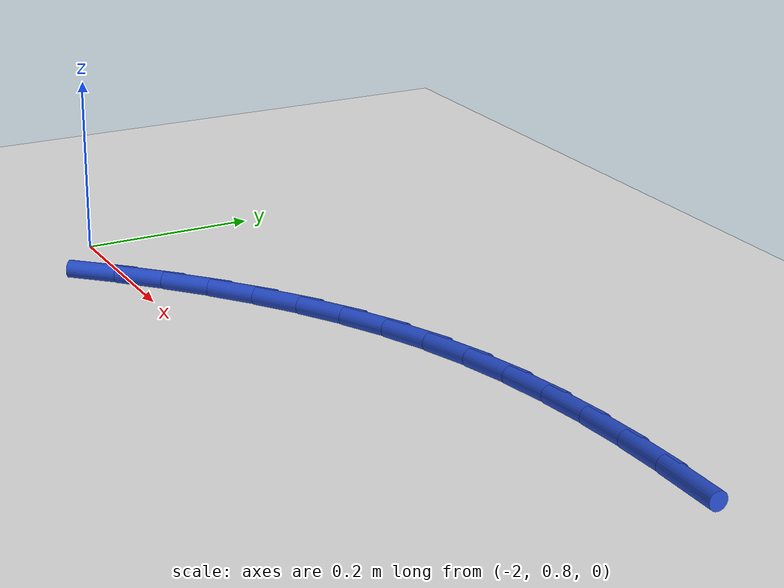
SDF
<sdf version="1.6">
 <world name="default">
  <model name="ground_plane">
   <static>1</static>
   <link name="link">
    <collision name="collision">
     <geometry><plane><normal>0 0 1</normal><size>100 100</size></plane></geometry>
     <surface><friction><ode><mu>100</mu><mu2>50</mu2></ode></friction></surface>
    </collision>
    <visual name="visual">
     <cast_shadows>0</cast_shadows>
     <geometry><plane><normal>0 0 1</normal><size>100 100</size></plane></geometry>
     <material>
      <script><uri>file://media/materials/scripts/gazebo.material</uri><name>Gazebo/WhiteGlow</name></script>
     </material>
    </visual>
   </link>
  </model>
  <model name="line">
   <link name="link_30">
    <pose>-1.1622267422665127 1.0493961772892269 0.01 0 1.57 -0.014316655820157379</pose>
    <collision name="collision">
     <geometry><cylinder><radius>0.01</radius><length>0.08</length></cylinder></geometry>
    </collision>
    <visual name="visual">
     <material>
      <script><name>Gazebo/Blue</name><uri>file://media/materials/scripts/gazebo.material</uri></script>
     </material>
     <geometry><cylinder><radius>0.01</radius><length>0.08</length></cylinder></geometry>
    </visual>
   </link>
   <link name="link_31">
    <pose>-1.2209317504058308 1.0502366941124297 0.01 0 1.57 0.02506779974748597</pose>
    <collision name="collision">
     <geometry><cylinder><radius>0.01</radius><length>0.08</length></cylinder></geometry>
    </collision>
    <visual name="visual">
     <material>
      <script><name>Gazebo/Blue</name><uri>file://media/materials/scripts/gazebo.material</uri></script>
     </material>
     <geometry><cylinder><radius>0.01</radius><length>0.08</length></cylinder></geometry>
    </visual>
   </link>
   <link name="link_32">
    <pose>-1.279414379251177 1.0487703561246766 0.01 0 1.57 0.07020556306311454</pose>
    <collision name="collision">
     <geometry><cylinder><radius>0.01</radius><length>0.08</length></cylinder></geometry>
    </collision>
    <visual name="visual">
     <material>
      <script><name>Gazebo/Blue</name><uri>file://media/materials/scripts/gazebo.material</uri></script>
     </material>
     <geometry><cylinder><radius>0.01</radius><length>0.08</length></cylinder></geometry>
    </visual>
   </link>
   <link name="link_33">
    <pose>-1.3374150652069403 1.0446916820879997 0.01 0 1.57 0.12158714068256095</pose>
    <collision name="collision">
     <geometry><cylinder><radius>0.01</radius><length>0.08</length></cylinder></geometry>
    </collision>
    <visual name="visual">
     <material>
      <script><name>Gazebo/Blue</name><uri>file://media/materials/scripts/gazebo.material</uri></script>
     </material>
     <geometry><cylinder><radius>0.01</radius><length>0.08</length></cylinder></geometry>
    </visual>
   </link>
   <link name="link_34">
    <pose>-1.3946742446775118 1.0376951907644316 0.01 0 1.57 0.1796993722839628</pose>
    <collision name="collision">
     <geometry><cylinder><radius>0.01</radius><length>0.08</length></cylinder></geometry>
    </collision>
    <visual name="visual">
     <material>
      <script><name>Gazebo/Blue</name><uri>file://media/materials/scripts/gazebo.material</uri></script>
     </material>
     <geometry><cylinder><radius>0.01</radius><length>0.08</length></cylinder></geometry>
    </visual>
   </link>
   <link name="link_35">
    <pose>-1.4509323540672825 1.027475400916005 0.01 0 1.57 0.24496498429892669</pose>
    <collision name="collision">
     <geometry><cylinder><radius>0.01</radius><length>0.08</length></cylinder></geometry>
    </collision>
    <visual name="visual">
     <material>
      <script><name>Gazebo/Blue</name><uri>file://media/materials/scripts/gazebo.material</uri></script>
     </material>
     <geometry><cylinder><radius>0.01</radius><length>0.08</length></cylinder></geometry>
    </visual>
   </link>
   <link name="link_36">
    <pose>-1.5059298297806425 1.0137268313047518 0.01 0 1.57 0.31764712693837754</pose>
    <collision name="collision">
     <geometry><cylinder><radius>0.01</radius><length>0.08</length></cylinder></geometry>
    </collision>
    <visual name="visual">
     <material>
      <script><name>Gazebo/Blue</name><uri>file://media/materials/scripts/gazebo.material</uri></script>
     </material>
     <geometry><cylinder><radius>0.01</radius><length>0.08</length></cylinder></geometry>
    </visual>
   </link>
   <link name="link_37">
    <pose>-1.5594073642558026 0.9961444783330354 0.01 0 1.57 0.3947974078851705</pose>
    <collision name="collision">
     <geometry><cylinder><radius>0.01</radius><length>0.08</length></cylinder></geometry>
    </collision>
    <visual name="visual">
     <material>
      <script><name>Gazebo/Blue</name><uri>file://media/materials/scripts/gazebo.material</uri></script>
     </material>
     <geometry><cylinder><radius>0.01</radius><length>0.08</length></cylinder></geometry>
    </visual>
   </link>
   <link name="link_38">
    <pose>-1.6111844358561673 0.974570316389753 0.01 0 1.57 0.46886081951995673</pose>
    <collision name="collision">
     <geometry><cylinder><radius>0.01</radius><length>0.08</length></cylinder></geometry>
    </collision>
    <visual name="visual">
     <material>
      <script><name>Gazebo/Blue</name><uri>file://media/materials/scripts/gazebo.material</uri></script>
     </material>
     <geometry><cylinder><radius>0.01</radius><length>0.08</length></cylinder></geometry>
    </visual>
   </link>
   <link name="link_39">
    <pose>-1.6612702103586883 0.9492001885788691 0.01 0 1.57 0.5382776752756963</pose>
    <collision name="collision">
     <geometry><cylinder><radius>0.01</radius><length>0.08</length></cylinder></geometry>
    </collision>
    <visual name="visual">
     <material>
      <script><name>Gazebo/Blue</name><uri>file://media/materials/scripts/gazebo.material</uri></script>
     </material>
     <geometry><cylinder><radius>0.01</radius><length>0.08</length></cylinder></geometry>
    </visual>
   </link>
   <link name="link_40">
    <pose>-1.7097018228692775 0.9202821157968342 0.01 0 1.57 0.6027654074156421</pose>
    <collision name="collision">
     <geometry><cylinder><radius>0.01</radius><length>0.08</length></cylinder></geometry>
    </collision>
    <visual name="visual">
     <material>
      <script><name>Gazebo/Blue</name><uri>file://media/materials/scripts/gazebo.material</uri></script>
     </material>
     <geometry><cylinder><radius>0.01</radius><length>0.08</length></cylinder></geometry>
    </visual>
   </link>
   <link name="link_41">
    <pose>-1.7565164084938474 0.8880641189400964 0.01 0 1.57 0.662245372470966</pose>
    <collision name="collision">
     <geometry><cylinder><radius>0.01</radius><length>0.08</length></cylinder></geometry>
    </collision>
    <visual name="visual">
     <material>
      <script><name>Gazebo/Blue</name><uri>file://media/materials/scripts/gazebo.material</uri></script>
     </material>
     <geometry><cylinder><radius>0.01</radius><length>0.08</length></cylinder></geometry>
    </visual>
   </link>
   <link name="link_42">
    <pose>-1.801751102338311 0.8527942189051063 0.01 0 1.57 0.7167955934639947</pose>
    <collision name="collision">
     <geometry><cylinder><radius>0.01</radius><length>0.08</length></cylinder></geometry>
    </collision>
    <visual name="visual">
     <material>
      <script><name>Gazebo/Blue</name><uri>file://media/materials/scripts/gazebo.material</uri></script>
     </material>
     <geometry><cylinder><radius>0.01</radius><length>0.08</length></cylinder></geometry>
    </visual>
   </link>
   <link name="link_43">
    <pose>-1.8454430395085801 0.8147204365883121 0.01 0 1.57 0.7666036143970951</pose>
    <collision name="collision">
     <geometry><cylinder><radius>0.01</radius><length>0.08</length></cylinder></geometry>
    </collision>
    <visual name="visual">
     <material>
      <script><name>Gazebo/Blue</name><uri>file://media/materials/scripts/gazebo.material</uri></script>
     </material>
     <geometry><cylinder><radius>0.01</radius><length>0.08</length></cylinder></geometry>
    </visual>
   </link>
   <link name="link_44">
    <pose>-1.8876293551105674 0.7740907928861643 0.01 0 1.57 0.8119252815259758</pose>
    <collision name="collision">
     <geometry><cylinder><radius>0.01</radius><length>0.08</length></cylinder></geometry>
    </collision>
    <visual name="visual">
     <material>
      <script><name>Gazebo/Blue</name><uri>file://media/materials/scripts/gazebo.material</uri></script>
     </material>
     <geometry><cylinder><radius>0.01</radius><length>0.08</length></cylinder></geometry>
    </visual>
   </link>
  </model>
 </world>
</sdf>
